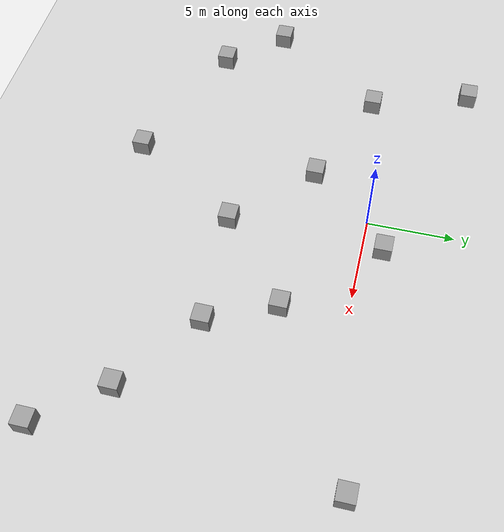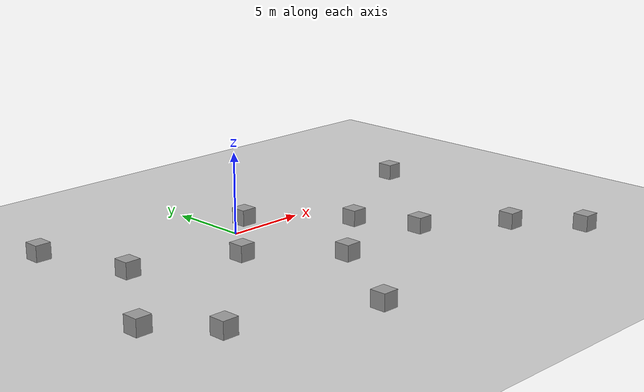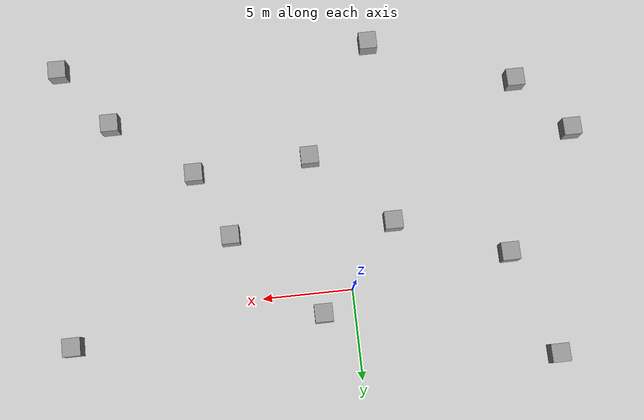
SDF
<sdf version="1.7">
 <world name="my_world">
  <model name="ground_plane">
   <static>1</static>
   <link name="link">
    <collision name="collision">
     <geometry><plane><normal>0 0 1</normal><size>100 100</size></plane></geometry>
     <surface>
      <contact><collide_bitmask>65535</collide_bitmask></contact>
      <friction><ode><mu>100</mu><mu2>50</mu2></ode></friction>
     </surface>
    </collision>
    <visual name="visual">
     <cast_shadows>0</cast_shadows>
     <geometry><plane><normal>0 0 1</normal><size>100 100</size></plane></geometry>
     <material>
      <script><uri>file://media/materials/scripts/gazebo.material</uri><name>Gazebo/Grey</name></script>
     </material>
    </visual>
   </link>
  </model>
  <model name="Untitled">
   <link name="link_0">
    <inertial>
     <mass>1</mass>
     <inertia>
      <ixx>0.166667</ixx>
      <ixy>0</ixy>
      <ixz>0</ixz>
      <iyy>0.166667</iyy>
      <iyz>0</iyz>
      <izz>0.166667</izz>
     </inertia>
    </inertial>
    <pose>-11.7361 10.376 0 0 -0 0</pose>
    <visual name="visual">
     <geometry><box><size>1 1 1</size></box></geometry>
     <material>
      <lighting>1</lighting>
      <script><uri>file://media/materials/scripts/gazebo.material</uri><name>Gazebo/Grey</name></script>
      <shader type="pixel"/>
     </material>
    </visual>
    <collision name="collision">
     <geometry><box><size>1 1 1</size></box></geometry>
     <surface>
      <friction>
       <ode><mu>1</mu><mu2>1</mu2><fdir1>0 0 0</fdir1><slip1>0</slip1><slip2>0</slip2></ode>
       <torsional>
        <coefficient>1</coefficient>
        <patch_radius>0</patch_radius>
        <surface_radius>0</surface_radius>
        <use_patch_radius>1</use_patch_radius>
        <ode><slip>0</slip></ode>
       </torsional>
      </friction>
      <bounce><restitution_coefficient>0</restitution_coefficient><threshold>1e+06</threshold></bounce>
      <contact>
       <collide_without_contact>0</collide_without_contact>
       <collide_without_contact_bitmask>1</collide_without_contact_bitmask>
       <collide_bitmask>1</collide_bitmask>
       <ode>
        <soft_cfm>0</soft_cfm>
        <soft_erp>0.2</soft_erp>
        <kp>1e+13</kp>
        <kd>1</kd>
        <max_vel>0.01</max_vel>
        <min_depth>0</min_depth>
       </ode>
       <bullet>
        <split_impulse>1</split_impulse>
        <split_impulse_penetration_threshold>-0.01</split_impulse_penetration_threshold>
        <soft_cfm>0</soft_cfm>
        <soft_erp>0.2</soft_erp>
        <kp>1e+13</kp>
        <kd>1</kd>
       </bullet>
      </contact>
     </surface>
    </collision>
   </link>
   <link name="link_1">
    <inertial>
     <mass>1</mass>
     <inertia>
      <ixx>0.166667</ixx>
      <ixy>0</ixy>
      <ixz>0</ixz>
      <iyy>0.166667</iyy>
      <iyz>0</iyz>
      <izz>0.166667</izz>
     </inertia>
    </inertial>
    <pose>-9.86873 4.59948 0 0 -0 0</pose>
    <visual name="visual">
     <geometry><box><size>1 1 1</size></box></geometry>
     <material>
      <lighting>1</lighting>
      <script><uri>file://media/materials/scripts/gazebo.material</uri><name>Gazebo/Grey</name></script>
      <shader type="pixel"/>
     </material>
    </visual>
    <collision name="collision">
     <geometry><box><size>1 1 1</size></box></geometry>
     <surface>
      <friction>
       <ode><mu>1</mu><mu2>1</mu2><fdir1>0 0 0</fdir1><slip1>0</slip1><slip2>0</slip2></ode>
       <torsional>
        <coefficient>1</coefficient>
        <patch_radius>0</patch_radius>
        <surface_radius>0</surface_radius>
        <use_patch_radius>1</use_patch_radius>
        <ode><slip>0</slip></ode>
       </torsional>
      </friction>
      <bounce><restitution_coefficient>0</restitution_coefficient><threshold>1e+06</threshold></bounce>
      <contact>
       <collide_without_contact>0</collide_without_contact>
       <collide_without_contact_bitmask>1</collide_without_contact_bitmask>
       <collide_bitmask>1</collide_bitmask>
       <ode>
        <soft_cfm>0</soft_cfm>
        <soft_erp>0.2</soft_erp>
        <kp>1e+13</kp>
        <kd>1</kd>
        <max_vel>0.01</max_vel>
        <min_depth>0</min_depth>
       </ode>
       <bullet>
        <split_impulse>1</split_impulse>
        <split_impulse_penetration_threshold>-0.01</split_impulse_penetration_threshold>
        <soft_cfm>0</soft_cfm>
        <soft_erp>0.2</soft_erp>
        <kp>1e+13</kp>
        <kd>1</kd>
       </bullet>
      </contact>
     </surface>
    </collision>
   </link>
   <link name="link_10">
    <inertial>
     <mass>1</mass>
     <inertia>
      <ixx>0.166667</ixx>
      <ixy>0</ixy>
      <ixz>0</ixz>
      <iyy>0.166667</iyy>
      <iyz>0</iyz>
      <izz>0.166667</izz>
     </inertia>
    </inertial>
    <pose>11.7248 -5.10078 0 0 -0 0</pose>
    <visual name="visual">
     <geometry><box><size>1 1 1</size></box></geometry>
     <material>
      <lighting>1</lighting>
      <script><uri>file://media/materials/scripts/gazebo.material</uri><name>Gazebo/Grey</name></script>
      <shader type="pixel"/>
     </material>
    </visual>
    <collision name="collision">
     <geometry><box><size>1 1 1</size></box></geometry>
     <surface>
      <friction>
       <ode><mu>1</mu><mu2>1</mu2><fdir1>0 0 0</fdir1><slip1>0</slip1><slip2>0</slip2></ode>
       <torsional>
        <coefficient>1</coefficient>
        <patch_radius>0</patch_radius>
        <surface_radius>0</surface_radius>
        <use_patch_radius>1</use_patch_radius>
        <ode><slip>0</slip></ode>
       </torsional>
      </friction>
      <bounce><restitution_coefficient>0</restitution_coefficient><threshold>1e+06</threshold></bounce>
      <contact>
       <collide_without_contact>0</collide_without_contact>
       <collide_without_contact_bitmask>1</collide_without_contact_bitmask>
       <collide_bitmask>1</collide_bitmask>
       <ode>
        <soft_cfm>0</soft_cfm>
        <soft_erp>0.2</soft_erp>
        <kp>1e+13</kp>
        <kd>1</kd>
        <max_vel>0.01</max_vel>
        <min_depth>0</min_depth>
       </ode>
       <bullet>
        <split_impulse>1</split_impulse>
        <split_impulse_penetration_threshold>-0.01</split_impulse_penetration_threshold>
        <soft_cfm>0</soft_cfm>
        <soft_erp>0.2</soft_erp>
        <kp>1e+13</kp>
        <kd>1</kd>
       </bullet>
      </contact>
     </surface>
    </collision>
   </link>
   <link name="link_11">
    <inertial>
     <mass>1</mass>
     <inertia>
      <ixx>0.166667</ixx>
      <ixy>0</ixy>
      <ixz>0</ixz>
      <iyy>0.166667</iyy>
      <iyz>0</iyz>
      <izz>0.166667</izz>
     </inertia>
    </inertial>
    <pose>-3.47257 -8.45059 0 0 -0 0</pose>
    <visual name="visual">
     <geometry><box><size>1 1 1</size></box></geometry>
     <material>
      <lighting>1</lighting>
      <script><uri>file://media/materials/scripts/gazebo.material</uri><name>Gazebo/Grey</name></script>
      <shader type="pixel"/>
     </material>
    </visual>
    <collision name="collision">
     <geometry><box><size>1 1 1</size></box></geometry>
     <surface>
      <friction>
       <ode><mu>1</mu><mu2>1</mu2><fdir1>0 0 0</fdir1><slip1>0</slip1><slip2>0</slip2></ode>
       <torsional>
        <coefficient>1</coefficient>
        <patch_radius>0</patch_radius>
        <surface_radius>0</surface_radius>
        <use_patch_radius>1</use_patch_radius>
        <ode><slip>0</slip></ode>
       </torsional>
      </friction>
      <bounce><restitution_coefficient>0</restitution_coefficient><threshold>1e+06</threshold></bounce>
      <contact>
       <collide_without_contact>0</collide_without_contact>
       <collide_without_contact_bitmask>1</collide_without_contact_bitmask>
       <collide_bitmask>1</collide_bitmask>
       <ode>
        <soft_cfm>0</soft_cfm>
        <soft_erp>0.2</soft_erp>
        <kp>1e+13</kp>
        <kd>1</kd>
        <max_vel>0.01</max_vel>
        <min_depth>0</min_depth>
       </ode>
       <bullet>
        <split_impulse>1</split_impulse>
        <split_impulse_penetration_threshold>-0.01</split_impulse_penetration_threshold>
        <soft_cfm>0</soft_cfm>
        <soft_erp>0.2</soft_erp>
        <kp>1e+13</kp>
        <kd>1</kd>
       </bullet>
      </contact>
     </surface>
    </collision>
   </link>
   <link name="link_12">
    <inertial>
     <mass>1</mass>
     <inertia>
      <ixx>0.166667</ixx>
      <ixy>0</ixy>
      <ixz>0</ixz>
      <iyy>0.166667</iyy>
      <iyz>0</iyz>
      <izz>0.166667</izz>
     </inertia>
    </inertial>
    <pose>14.5027 -8.59174 0 0 -0 0</pose>
    <visual name="visual">
     <geometry><box><size>1 1 1</size></box></geometry>
     <material>
      <lighting>1</lighting>
      <script><uri>file://media/materials/scripts/gazebo.material</uri><name>Gazebo/Grey</name></script>
      <shader type="pixel"/>
     </material>
    </visual>
    <collision name="collision">
     <geometry><box><size>1 1 1</size></box></geometry>
     <surface>
      <friction>
       <ode><mu>1</mu><mu2>1</mu2><fdir1>0 0 0</fdir1><slip1>0</slip1><slip2>0</slip2></ode>
       <torsional>
        <coefficient>1</coefficient>
        <patch_radius>0</patch_radius>
        <surface_radius>0</surface_radius>
        <use_patch_radius>1</use_patch_radius>
        <ode><slip>0</slip></ode>
       </torsional>
      </friction>
      <bounce><restitution_coefficient>0</restitution_coefficient><threshold>1e+06</threshold></bounce>
      <contact>
       <collide_without_contact>0</collide_without_contact>
       <collide_without_contact_bitmask>1</collide_without_contact_bitmask>
       <collide_bitmask>1</collide_bitmask>
       <ode>
        <soft_cfm>0</soft_cfm>
        <soft_erp>0.2</soft_erp>
        <kp>1e+13</kp>
        <kd>1</kd>
        <max_vel>0.01</max_vel>
        <min_depth>0</min_depth>
       </ode>
       <bullet>
        <split_impulse>1</split_impulse>
        <split_impulse_penetration_threshold>-0.01</split_impulse_penetration_threshold>
        <soft_cfm>0</soft_cfm>
        <soft_erp>0.2</soft_erp>
        <kp>1e+13</kp>
        <kd>1</kd>
       </bullet>
      </contact>
     </surface>
    </collision>
   </link>
   <link name="link_2">
    <inertial>
     <mass>1</mass>
     <inertia>
      <ixx>0.166667</ixx>
      <ixy>0</ixy>
      <ixz>0</ixz>
      <iyy>0.166667</iyy>
      <iyz>0</iyz>
      <izz>0.166667</izz>
     </inertia>
    </inertial>
    <pose>0.764529 6.87658 0 0 -0 0</pose>
    <visual name="visual">
     <geometry><box><size>1 1 1</size></box></geometry>
     <material>
      <lighting>1</lighting>
      <script><uri>file://media/materials/scripts/gazebo.material</uri><name>Gazebo/Grey</name></script>
      <shader type="pixel"/>
     </material>
    </visual>
    <collision name="collision">
     <geometry><box><size>1 1 1</size></box></geometry>
     <surface>
      <friction>
       <ode><mu>1</mu><mu2>1</mu2><fdir1>0 0 0</fdir1><slip1>0</slip1><slip2>0</slip2></ode>
       <torsional>
        <coefficient>1</coefficient>
        <patch_radius>0</patch_radius>
        <surface_radius>0</surface_radius>
        <use_patch_radius>1</use_patch_radius>
        <ode><slip>0</slip></ode>
       </torsional>
      </friction>
      <bounce><restitution_coefficient>0</restitution_coefficient><threshold>1e+06</threshold></bounce>
      <contact>
       <collide_without_contact>0</collide_without_contact>
       <collide_without_contact_bitmask>1</collide_without_contact_bitmask>
       <collide_bitmask>1</collide_bitmask>
       <ode>
        <soft_cfm>0</soft_cfm>
        <soft_erp>0.2</soft_erp>
        <kp>1e+13</kp>
        <kd>1</kd>
        <max_vel>0.01</max_vel>
        <min_depth>0</min_depth>
       </ode>
       <bullet>
        <split_impulse>1</split_impulse>
        <split_impulse_penetration_threshold>-0.01</split_impulse_penetration_threshold>
        <soft_cfm>0</soft_cfm>
        <soft_erp>0.2</soft_erp>
        <kp>1e+13</kp>
        <kd>1</kd>
       </bullet>
      </contact>
     </surface>
    </collision>
   </link>
   <link name="link_3">
    <inertial>
     <mass>1</mass>
     <inertia>
      <ixx>0.166667</ixx>
      <ixy>0</ixy>
      <ixz>0</ixz>
      <iyy>0.166667</iyy>
      <iyz>0</iyz>
      <izz>0.166667</izz>
     </inertia>
    </inertial>
    <pose>14.5365 7.25535 0 0 -0 0</pose>
    <visual name="visual">
     <geometry><box><size>1 1 1</size></box></geometry>
     <material>
      <lighting>1</lighting>
      <script><uri>file://media/materials/scripts/gazebo.material</uri><name>Gazebo/Grey</name></script>
      <shader type="pixel"/>
     </material>
    </visual>
    <collision name="collision">
     <geometry><box><size>1 1 1</size></box></geometry>
     <surface>
      <friction>
       <ode><mu>1</mu><mu2>1</mu2><fdir1>0 0 0</fdir1><slip1>0</slip1><slip2>0</slip2></ode>
       <torsional>
        <coefficient>1</coefficient>
        <patch_radius>0</patch_radius>
        <surface_radius>0</surface_radius>
        <use_patch_radius>1</use_patch_radius>
        <ode><slip>0</slip></ode>
       </torsional>
      </friction>
      <bounce><restitution_coefficient>0</restitution_coefficient><threshold>1e+06</threshold></bounce>
      <contact>
       <collide_without_contact>0</collide_without_contact>
       <collide_without_contact_bitmask>1</collide_without_contact_bitmask>
       <collide_bitmask>1</collide_bitmask>
       <ode>
        <soft_cfm>0</soft_cfm>
        <soft_erp>0.2</soft_erp>
        <kp>1e+13</kp>
        <kd>1</kd>
        <max_vel>0.01</max_vel>
        <min_depth>0</min_depth>
       </ode>
       <bullet>
        <split_impulse>1</split_impulse>
        <split_impulse_penetration_threshold>-0.01</split_impulse_penetration_threshold>
        <soft_cfm>0</soft_cfm>
        <soft_erp>0.2</soft_erp>
        <kp>1e+13</kp>
        <kd>1</kd>
       </bullet>
      </contact>
     </surface>
    </collision>
   </link>
   <link name="link_4">
    <inertial>
     <mass>1</mass>
     <inertia>
      <ixx>0.166667</ixx>
      <ixy>0</ixy>
      <ixz>0</ixz>
      <iyy>0.166667</iyy>
      <iyz>0</iyz>
      <izz>0.166667</izz>
     </inertia>
    </inertial>
    <pose>-3.6643 2.16941 0 0 -0 0</pose>
    <visual name="visual">
     <geometry><box><size>1 1 1</size></box></geometry>
     <material>
      <lighting>1</lighting>
      <script><uri>file://media/materials/scripts/gazebo.material</uri><name>Gazebo/Grey</name></script>
      <shader type="pixel"/>
     </material>
    </visual>
    <collision name="collision">
     <geometry><box><size>1 1 1</size></box></geometry>
     <surface>
      <friction>
       <ode><mu>1</mu><mu2>1</mu2><fdir1>0 0 0</fdir1><slip1>0</slip1><slip2>0</slip2></ode>
       <torsional>
        <coefficient>1</coefficient>
        <patch_radius>0</patch_radius>
        <surface_radius>0</surface_radius>
        <use_patch_radius>1</use_patch_radius>
        <ode><slip>0</slip></ode>
       </torsional>
      </friction>
      <bounce><restitution_coefficient>0</restitution_coefficient><threshold>1e+06</threshold></bounce>
      <contact>
       <collide_without_contact>0</collide_without_contact>
       <collide_without_contact_bitmask>1</collide_without_contact_bitmask>
       <collide_bitmask>1</collide_bitmask>
       <ode>
        <soft_cfm>0</soft_cfm>
        <soft_erp>0.2</soft_erp>
        <kp>1e+13</kp>
        <kd>1</kd>
        <max_vel>0.01</max_vel>
        <min_depth>0</min_depth>
       </ode>
       <bullet>
        <split_impulse>1</split_impulse>
        <split_impulse_penetration_threshold>-0.01</split_impulse_penetration_threshold>
        <soft_cfm>0</soft_cfm>
        <soft_erp>0.2</soft_erp>
        <kp>1e+13</kp>
        <kd>1</kd>
       </bullet>
      </contact>
     </surface>
    </collision>
   </link>
   <link name="link_5">
    <inertial>
     <mass>1</mass>
     <inertia>
      <ixx>0.166667</ixx>
      <ixy>0</ixy>
      <ixz>0</ixz>
      <iyy>0.166667</iyy>
      <iyz>0</iyz>
      <izz>0.166667</izz>
     </inertia>
    </inertial>
    <pose>5.45574 2.04349 0 0 -0 0</pose>
    <visual name="visual">
     <geometry><box><size>1 1 1</size></box></geometry>
     <material>
      <lighting>1</lighting>
      <script><uri>file://media/materials/scripts/gazebo.material</uri><name>Gazebo/Grey</name></script>
      <shader type="pixel"/>
     </material>
    </visual>
    <collision name="collision">
     <geometry><box><size>1 1 1</size></box></geometry>
     <surface>
      <friction>
       <ode><mu>1</mu><mu2>1</mu2><fdir1>0 0 0</fdir1><slip1>0</slip1><slip2>0</slip2></ode>
       <torsional>
        <coefficient>1</coefficient>
        <patch_radius>0</patch_radius>
        <surface_radius>0</surface_radius>
        <use_patch_radius>1</use_patch_radius>
        <ode><slip>0</slip></ode>
       </torsional>
      </friction>
      <bounce><restitution_coefficient>0</restitution_coefficient><threshold>1e+06</threshold></bounce>
      <contact>
       <collide_without_contact>0</collide_without_contact>
       <collide_without_contact_bitmask>1</collide_without_contact_bitmask>
       <collide_bitmask>1</collide_bitmask>
       <ode>
        <soft_cfm>0</soft_cfm>
        <soft_erp>0.2</soft_erp>
        <kp>1e+13</kp>
        <kd>1</kd>
        <max_vel>0.01</max_vel>
        <min_depth>0</min_depth>
       </ode>
       <bullet>
        <split_impulse>1</split_impulse>
        <split_impulse_penetration_threshold>-0.01</split_impulse_penetration_threshold>
        <soft_cfm>0</soft_cfm>
        <soft_erp>0.2</soft_erp>
        <kp>1e+13</kp>
        <kd>1</kd>
       </bullet>
      </contact>
     </surface>
    </collision>
   </link>
   <link name="link_6">
    <inertial>
     <mass>1</mass>
     <inertia>
      <ixx>0.166667</ixx>
      <ixy>0</ixy>
      <ixz>0</ixz>
      <iyy>0.166667</iyy>
      <iyz>0</iyz>
      <izz>0.166667</izz>
     </inertia>
    </inertial>
    <pose>7.19325 -1.71375 0 0 -0 0</pose>
    <visual name="visual">
     <geometry><box><size>1 1 1</size></box></geometry>
     <material>
      <lighting>1</lighting>
      <script><uri>file://media/materials/scripts/gazebo.material</uri><name>Gazebo/Grey</name></script>
      <shader type="pixel"/>
     </material>
    </visual>
    <collision name="collision">
     <geometry><box><size>1 1 1</size></box></geometry>
     <surface>
      <friction>
       <ode><mu>1</mu><mu2>1</mu2><fdir1>0 0 0</fdir1><slip1>0</slip1><slip2>0</slip2></ode>
       <torsional>
        <coefficient>1</coefficient>
        <patch_radius>0</patch_radius>
        <surface_radius>0</surface_radius>
        <use_patch_radius>1</use_patch_radius>
        <ode><slip>0</slip></ode>
       </torsional>
      </friction>
      <bounce><restitution_coefficient>0</restitution_coefficient><threshold>1e+06</threshold></bounce>
      <contact>
       <collide_without_contact>0</collide_without_contact>
       <collide_without_contact_bitmask>1</collide_without_contact_bitmask>
       <collide_bitmask>1</collide_bitmask>
       <ode>
        <soft_cfm>0</soft_cfm>
        <soft_erp>0.2</soft_erp>
        <kp>1e+13</kp>
        <kd>1</kd>
        <max_vel>0.01</max_vel>
        <min_depth>0</min_depth>
       </ode>
       <bullet>
        <split_impulse>1</split_impulse>
        <split_impulse_penetration_threshold>-0.01</split_impulse_penetration_threshold>
        <soft_cfm>0</soft_cfm>
        <soft_erp>0.2</soft_erp>
        <kp>1e+13</kp>
        <kd>1</kd>
       </bullet>
      </contact>
     </surface>
    </collision>
   </link>
   <link name="link_7">
    <inertial>
     <mass>1</mass>
     <inertia>
      <ixx>0.166667</ixx>
      <ixy>0</ixy>
      <ixz>0</ixz>
      <iyy>0.166667</iyy>
      <iyz>0</iyz>
      <izz>0.166667</izz>
     </inertia>
    </inertial>
    <pose>0.605863 -2.01965 0 0 -0 0</pose>
    <visual name="visual">
     <geometry><box><size>1 1 1</size></box></geometry>
     <material>
      <lighting>1</lighting>
      <script><uri>file://media/materials/scripts/gazebo.material</uri><name>Gazebo/Grey</name></script>
      <shader type="pixel"/>
     </material>
    </visual>
    <collision name="collision">
     <geometry><box><size>1 1 1</size></box></geometry>
     <surface>
      <friction>
       <ode><mu>1</mu><mu2>1</mu2><fdir1>0 0 0</fdir1><slip1>0</slip1><slip2>0</slip2></ode>
       <torsional>
        <coefficient>1</coefficient>
        <patch_radius>0</patch_radius>
        <surface_radius>0</surface_radius>
        <use_patch_radius>1</use_patch_radius>
        <ode><slip>0</slip></ode>
       </torsional>
      </friction>
      <bounce><restitution_coefficient>0</restitution_coefficient><threshold>1e+06</threshold></bounce>
      <contact>
       <collide_without_contact>0</collide_without_contact>
       <collide_without_contact_bitmask>1</collide_without_contact_bitmask>
       <collide_bitmask>1</collide_bitmask>
       <ode>
        <soft_cfm>0</soft_cfm>
        <soft_erp>0.2</soft_erp>
        <kp>1e+13</kp>
        <kd>1</kd>
        <max_vel>0.01</max_vel>
        <min_depth>0</min_depth>
       </ode>
       <bullet>
        <split_impulse>1</split_impulse>
        <split_impulse_penetration_threshold>-0.01</split_impulse_penetration_threshold>
        <soft_cfm>0</soft_cfm>
        <soft_erp>0.2</soft_erp>
        <kp>1e+13</kp>
        <kd>1</kd>
       </bullet>
      </contact>
     </surface>
    </collision>
   </link>
   <link name="link_8">
    <inertial>
     <mass>1</mass>
     <inertia>
      <ixx>0.166667</ixx>
      <ixy>0</ixy>
      <ixz>0</ixz>
      <iyy>0.166667</iyy>
      <iyz>0</iyz>
      <izz>0.166667</izz>
     </inertia>
    </inertial>
    <pose>-14.4058 -2.10305 0 0 -0 0</pose>
    <visual name="visual">
     <geometry><box><size>1 1 1</size></box></geometry>
     <material>
      <lighting>1</lighting>
      <script><uri>file://media/materials/scripts/gazebo.material</uri><name>Gazebo/Grey</name></script>
      <shader type="pixel"/>
     </material>
    </visual>
    <collision name="collision">
     <geometry><box><size>1 1 1</size></box></geometry>
     <surface>
      <friction>
       <ode><mu>1</mu><mu2>1</mu2><fdir1>0 0 0</fdir1><slip1>0</slip1><slip2>0</slip2></ode>
       <torsional>
        <coefficient>1</coefficient>
        <patch_radius>0</patch_radius>
        <surface_radius>0</surface_radius>
        <use_patch_radius>1</use_patch_radius>
        <ode><slip>0</slip></ode>
       </torsional>
      </friction>
      <bounce><restitution_coefficient>0</restitution_coefficient><threshold>1e+06</threshold></bounce>
      <contact>
       <collide_without_contact>0</collide_without_contact>
       <collide_without_contact_bitmask>1</collide_without_contact_bitmask>
       <collide_bitmask>1</collide_bitmask>
       <ode>
        <soft_cfm>0</soft_cfm>
        <soft_erp>0.2</soft_erp>
        <kp>1e+13</kp>
        <kd>1</kd>
        <max_vel>0.01</max_vel>
        <min_depth>0</min_depth>
       </ode>
       <bullet>
        <split_impulse>1</split_impulse>
        <split_impulse_penetration_threshold>-0.01</split_impulse_penetration_threshold>
        <soft_cfm>0</soft_cfm>
        <soft_erp>0.2</soft_erp>
        <kp>1e+13</kp>
        <kd>1</kd>
       </bullet>
      </contact>
     </surface>
    </collision>
   </link>
   <link name="link_9">
    <inertial>
     <mass>1</mass>
     <inertia>
      <ixx>0.166667</ixx>
      <ixy>0</ixy>
      <ixz>0</ixz>
      <iyy>0.166667</iyy>
      <iyz>0</iyz>
      <izz>0.166667</izz>
     </inertia>
    </inertial>
    <pose>-11.6359 -5.34072 0 0 -0 0</pose>
    <visual name="visual">
     <geometry><box><size>1 1 1</size></box></geometry>
     <material>
      <lighting>1</lighting>
      <script><uri>file://media/materials/scripts/gazebo.material</uri><name>Gazebo/Grey</name></script>
      <shader type="pixel"/>
     </material>
    </visual>
    <collision name="collision">
     <geometry><box><size>1 1 1</size></box></geometry>
     <surface>
      <friction>
       <ode><mu>1</mu><mu2>1</mu2><fdir1>0 0 0</fdir1><slip1>0</slip1><slip2>0</slip2></ode>
       <torsional>
        <coefficient>1</coefficient>
        <patch_radius>0</patch_radius>
        <surface_radius>0</surface_radius>
        <use_patch_radius>1</use_patch_radius>
        <ode><slip>0</slip></ode>
       </torsional>
      </friction>
      <bounce><restitution_coefficient>0</restitution_coefficient><threshold>1e+06</threshold></bounce>
      <contact>
       <collide_without_contact>0</collide_without_contact>
       <collide_without_contact_bitmask>1</collide_without_contact_bitmask>
       <collide_bitmask>1</collide_bitmask>
       <ode>
        <soft_cfm>0</soft_cfm>
        <soft_erp>0.2</soft_erp>
        <kp>1e+13</kp>
        <kd>1</kd>
        <max_vel>0.01</max_vel>
        <min_depth>0</min_depth>
       </ode>
       <bullet>
        <split_impulse>1</split_impulse>
        <split_impulse_penetration_threshold>-0.01</split_impulse_penetration_threshold>
        <soft_cfm>0</soft_cfm>
        <soft_erp>0.2</soft_erp>
        <kp>1e+13</kp>
        <kd>1</kd>
       </bullet>
      </contact>
     </surface>
    </collision>
   </link>
   <static>0</static>
   <pose>0.968798 -5.71233 0.5 0 -0 0</pose>
  </model>
 </world>
</sdf>
